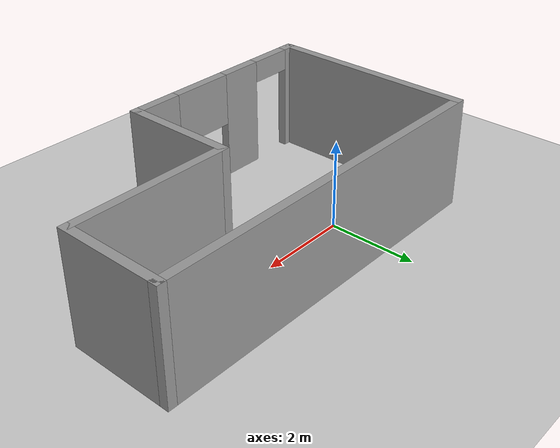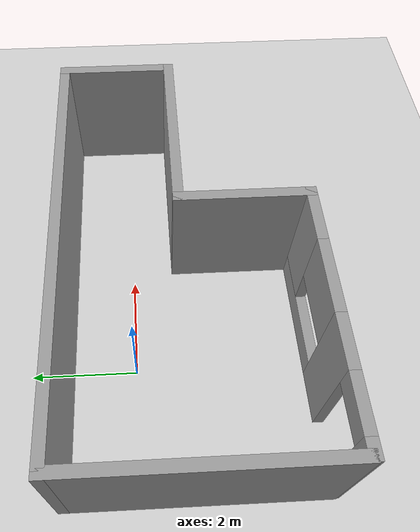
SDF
<sdf version='1.4'>
  <world name='default'>
    <light name='sun' type='directional'>
      <cast_shadows>1</cast_shadows>
      <pose>0 0 10 0 -0 0</pose>
      <diffuse>0.8 0.8 0.8 1</diffuse>
      <specular>0.2 0.2 0.2 1</specular>
      <attenuation>
        <range>1000</range>
        <constant>0.9</constant>
        <linear>0.01</linear>
        <quadratic>0.001</quadratic>
      </attenuation>
      <direction>-0.5 0.1 -0.9</direction>
    </light>
    <include>
        <uri>model://ground_plane</uri>
    </include>
    <include>
        <uri>model://tinker_home</uri>
    </include>
  </world>
</sdf>

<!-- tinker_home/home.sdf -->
<sdf version='1.4'>
  <model name='home'>
    <link name='Wall_0'>
      <pose>-0.013018 -3.30997 0 0 -0 0</pose>
      <visual name='Wall_0_Visual_0'>
        <pose>-2.26326 0 1.25 0 -0 0</pose>
        <geometry>
          <box>
            <size>0.34745 0.2 2.5</size>
          </box>
        </geometry>
        <material>
          <script>
            <uri>file://media/materials/scripts/gazebo.material</uri>
            <name>Gazebo/Grey</name>
          </script>
        </material>
      </visual>
      <collision name='Wall_0_Collision_0'>
        <geometry>
          <box>
            <size>0.34745 0.2 2.5</size>
          </box>
        </geometry>
        <pose>-2.26326 0 1.25 0 -0 0</pose>
      </collision>
      <visual name='Wall_0_Visual_1'>
        <pose>-0.621306 0 1.25 0 -0 0</pose>
        <geometry>
          <box>
            <size>0.971437 0.2 2.5</size>
          </box>
        </geometry>
        <material>
          <script>
            <uri>file://media/materials/scripts/gazebo.material</uri>
            <name>Gazebo/Grey</name>
          </script>
        </material>
      </visual>
      <collision name='Wall_0_Collision_1'>
        <geometry>
          <box>
            <size>0.971437 0.2 2.5</size>
          </box>
        </geometry>
        <pose>-0.621306 0 1.25 0 -0 0</pose>
      </collision>
      <visual name='Wall_0_Visual_2'>
        <pose>1.1507 0 0.25 0 -0 0</pose>
        <geometry>
          <box>
            <size>2.57257 0.2 0.5</size>
          </box>
        </geometry>
        <material>
          <script>
            <uri>file://media/materials/scripts/gazebo.material</uri>
            <name>Gazebo/Grey</name>
          </script>
        </material>
      </visual>
      <collision name='Wall_0_Collision_2'>
        <geometry>
          <box>
            <size>2.57257 0.2 0.5</size>
          </box>
        </geometry>
        <pose>1.1507 0 0.25 0 -0 0</pose>
      </collision>
      <visual name='Wall_0_Visual_3'>
        <pose>1.85678 0 1.5 0 -0 0</pose>
        <geometry>
          <box>
            <size>1.16042 0.2 2</size>
          </box>
        </geometry>
        <material>
          <script>
            <uri>file://media/materials/scripts/gazebo.material</uri>
            <name>Gazebo/Grey</name>
          </script>
        </material>
      </visual>
      <collision name='Wall_0_Collision_3'>
        <geometry>
          <box>
            <size>1.16042 0.2 2</size>
          </box>
        </geometry>
        <pose>1.85678 0 1.5 0 -0 0</pose>
      </collision>
      <visual name='Wall_0_Visual_4'>
        <pose>0.570488 0 1.9 0 -0 0</pose>
        <geometry>
          <box>
            <size>1.41215 0.2 1.2</size>
          </box>
        </geometry>
        <material>
          <script>
            <uri>file://media/materials/scripts/gazebo.material</uri>
            <name>Gazebo/Grey</name>
          </script>
        </material>
      </visual>
      <collision name='Wall_0_Collision_4'>
        <geometry>
          <box>
            <size>1.41215 0.2 1.2</size>
          </box>
        </geometry>
        <pose>0.570488 0 1.9 0 -0 0</pose>
      </collision>
      <visual name='Wall_0_Visual_5'>
        <pose>-1.59828 0 2.25 0 -0 0</pose>
        <geometry>
          <box>
            <size>0.98251 0.2 0.5</size>
          </box>
        </geometry>
        <material>
          <script>
            <uri>file://media/materials/scripts/gazebo.material</uri>
            <name>Gazebo/Grey</name>
          </script>
        </material>
      </visual>
      <collision name='Wall_0_Collision_5'>
        <geometry>
          <box>
            <size>0.98251 0.2 0.5</size>
          </box>
        </geometry>
        <pose>-1.59828 0 2.25 0 -0 0</pose>
      </collision>
    </link>
    <link name='Wall_1'>
      <collision name='Wall_1_Collision'>
        <geometry>
          <box>
            <size>2.61751 0.2 2.5</size>
          </box>
        </geometry>
        <pose>0 0 1.25 0 -0 0</pose>
      </collision>
      <visual name='Wall_1_Visual'>
        <pose>0 0 1.25 0 -0 0</pose>
        <geometry>
          <box>
            <size>2.61751 0.2 2.5</size>
          </box>
        </geometry>
        <material>
          <script>
            <uri>file://media/materials/scripts/gazebo.material</uri>
            <name>Gazebo/Grey</name>
          </script>
        </material>
      </visual>
      <velocity_decay>
        <linear>0</linear>
        <angular>0</angular>
      </velocity_decay>
      <pose>2.32397 -2.10121 0 0 -0 1.5708</pose>
    </link>
    <link name='Wall_2'>
      <collision name='Wall_2_Collision'>
        <geometry>
          <box>
            <size>3.75048 0.2 2.5</size>
          </box>
        </geometry>
        <pose>0 0 1.25 0 -0 0</pose>
      </collision>
      <visual name='Wall_2_Visual'>
        <pose>0 0 1.25 0 -0 0</pose>
        <geometry>
          <box>
            <size>3.75048 0.2 2.5</size>
          </box>
        </geometry>
        <material>
          <script>
            <uri>file://media/materials/scripts/gazebo.material</uri>
            <name>Gazebo/Grey</name>
          </script>
        </material>
      </visual>
      <velocity_decay>
        <linear>0</linear>
        <angular>0</angular>
      </velocity_decay>
      <pose>4.09921 -0.892458 0 0 -0 0</pose>
    </link>
    <link name='Wall_3'>
      <collision name='Wall_3_Collision'>
        <geometry>
          <box>
            <size>2.38626 0.2 2.5</size>
          </box>
        </geometry>
        <pose>0 0 1.25 0 -0 0</pose>
      </collision>
      <visual name='Wall_3_Visual'>
        <pose>0 0 1.25 0 -0 0</pose>
        <geometry>
          <box>
            <size>2.38626 0.2 2.5</size>
          </box>
        </geometry>
        <material>
          <script>
            <uri>file://media/materials/scripts/gazebo.material</uri>
            <name>Gazebo/Grey</name>
          </script>
        </material>
      </visual>
      <velocity_decay>
        <linear>0</linear>
        <angular>0</angular>
      </velocity_decay>
      <pose>5.87445 0.200671 0 0 -0 1.5708</pose>
    </link>
    <link name='Wall_4'>
      <collision name='Wall_4_Collision'>
        <geometry>
          <box>
            <size>8.43782 0.2 2.5</size>
          </box>
        </geometry>
        <pose>0 0 1.25 0 -0 0</pose>
      </collision>
      <visual name='Wall_4_Visual'>
        <pose>0 0 1.25 0 -0 0</pose>
        <geometry>
          <box>
            <size>8.43782 0.2 2.5</size>
          </box>
        </geometry>
        <material>
          <script>
            <uri>file://media/materials/scripts/gazebo.material</uri>
            <name>Gazebo/Grey</name>
          </script>
        </material>
      </visual>
      <velocity_decay>
        <linear>0</linear>
        <angular>0</angular>
      </velocity_decay>
      <pose>1.75554 1.2938 0 0 -0 3.14159</pose>
    </link>
    <link name='Wall_5'>
      <collision name='Wall_5_Collision'>
        <geometry>
          <box>
            <size>4.74755 0.2 2.5</size>
          </box>
        </geometry>
        <pose>0 0 1.25 0 -0 0</pose>
      </collision>
      <visual name='Wall_5_Visual'>
        <pose>0 0 1.25 0 -0 0</pose>
        <geometry>
          <box>
            <size>4.74755 0.2 2.5</size>
          </box>
        </geometry>
        <material>
          <script>
            <uri>file://media/materials/scripts/gazebo.material</uri>
            <name>Gazebo/Grey</name>
          </script>
        </material>
      </visual>
      <velocity_decay>
        <linear>0</linear>
        <angular>0</angular>
      </velocity_decay>
      <pose>-2.36337 -0.979975 0 0 0 -1.5708</pose>
    </link>
    <static>1</static>
  </model>
</sdf>
